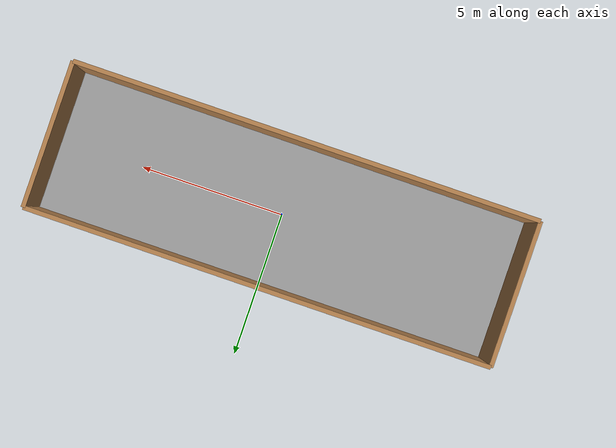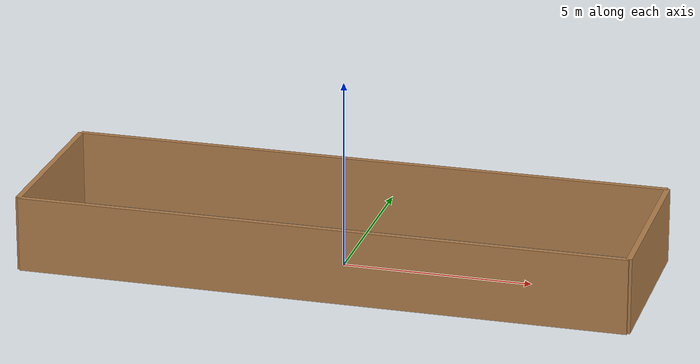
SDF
<?xml version='1.0'?>
<sdf version='1.6'>

  <model name='simple_room'>
    <pose>0 0 0 0 -0 0</pose>

    <link name="ground_plane">
      <collision name="ground_plane_collision">
        <geometry>
          <plane>
            <normal>0 0 1</normal>
            <size>16 5</size>
          </plane>
        </geometry>
        <surface>
          <contact>
             <collide_bitmask>0xffff</collide_bitmask>
          </contact>
          <friction>
            <ode>
              <mu>100</mu>
              <mu2>50</mu2>
            </ode>
          </friction>
        </surface>
      </collision>
      <visual name="ground_plane_visual">
        <cast_shadows>false</cast_shadows>
        <geometry>
          <plane>
            <normal>0 0 1</normal>
            <size>16 5</size>
          </plane>
        </geometry>
        <material>
          <script>
            <uri>file://media/materials/scripts/gazebo.material</uri>
            <name>Gazebo/GreyTransparent</name>
          </script>
        </material>
      </visual>
    </link>

    <link name='Wall_0'>
      <pose>0 -2.5 1 0 -0 0</pose>
      <collision name='Wall_0_Collision'>
        <geometry>
          <box>
            <size>16 0.15 2.0</size>
          </box>
        </geometry>
        <max_contacts>10</max_contacts>
        <surface>
          <contact>
            <ode/>
          </contact>
          <bounce/>
          <friction>
            <torsional>
              <ode/>
            </torsional>
            <ode/>
          </friction>
        </surface>
      </collision>
      <visual name='Wall_0_Visual'>
        <geometry>
          <box>
            <size>16 0.15 2.0</size>
          </box>
        </geometry>
        <material>
          <script>
            <uri>file://media/materials/scripts/gazebo.material</uri>
            <name>Gazebo/Wood</name>
          </script>
          <ambient>1 1 1 1</ambient>
        </material>
        <meta>
          <layer>0</layer>
        </meta>
      </visual>
      <self_collide>0</self_collide>
      <enable_wind>0</enable_wind>
      <kinematic>0</kinematic>
    </link>

    <link name='Wall_1'>
      <pose>8 -0 1 0 -0 1.5708</pose>
      <collision name='Wall_1_Collision'>
        <geometry>
          <box>
            <size>5 0.15 2.0</size>
          </box>
        </geometry>
        <max_contacts>10</max_contacts>
        <surface>
          <contact>
            <ode/>
          </contact>
          <bounce/>
          <friction>
            <torsional>
              <ode/>
            </torsional>
            <ode/>
          </friction>
        </surface>
      </collision>
      <visual name='Wall_1_Visual'>
        <geometry>
          <box>
            <size>5 0.15 2.0</size>
          </box>
        </geometry>
        <material>
          <script>
            <uri>file://media/materials/scripts/gazebo.material</uri>
            <name>Gazebo/Wood</name>
          </script>
          <ambient>1 1 1 1</ambient>
        </material>
        <meta>
          <layer>0</layer>
        </meta>
      </visual>
      <self_collide>0</self_collide>
      <enable_wind>0</enable_wind>
      <kinematic>0</kinematic>
    </link>

    <link name='Wall_2'>
      <pose>0 2.5 1 0 0 3.14159</pose>
      <collision name='Wall_2_Collision'>
        <geometry>
          <box>
            <size>16 0.15 2.0</size>
          </box>
        </geometry>
        <max_contacts>10</max_contacts>
        <surface>
          <contact>
            <ode/>
          </contact>
          <bounce/>
          <friction>
            <torsional>
              <ode/>
            </torsional>
            <ode/>
          </friction>
        </surface>
      </collision>
      <visual name='Wall_2_Visual'>
        <geometry>
          <box>
            <size>16 0.15 2.0</size>
          </box>
        </geometry>
        <material>
          <script>
            <uri>file://media/materials/scripts/gazebo.material</uri>
            <name>Gazebo/Wood</name>
          </script>
          <ambient>1 1 1 1</ambient>
        </material>
        <meta>
          <layer>0</layer>
        </meta>
      </visual>
      <self_collide>0</self_collide>
      <enable_wind>0</enable_wind>
      <kinematic>0</kinematic>
    </link>

    <link name='Wall_3'>
      <pose>-8 0 1 0 -0 -1.5708</pose>
      <collision name='Wall_3_Collision'>
        <geometry>
          <box>
            <size>5 0.15 2.0</size>
          </box>
        </geometry>
        <max_contacts>10</max_contacts>
        <surface>
          <contact>
            <ode/>
          </contact>
          <bounce/>
          <friction>
            <torsional>
              <ode/>
            </torsional>
            <ode/>
          </friction>
        </surface>
      </collision>
      <visual name='Wall_3_Visual'>
        <geometry>
          <box>
            <size>5 0.15 2.0</size>
          </box>
        </geometry>
        <material>
          <script>
            <uri>file://media/materials/scripts/gazebo.material</uri>
            <name>Gazebo/Wood</name>
          </script>
          <ambient>1 1 1 1</ambient>
        </material>
        <meta>
          <layer>0</layer>
        </meta>
      </visual>
      <self_collide>0</self_collide>
      <enable_wind>0</enable_wind>
      <kinematic>0</kinematic>
    </link>
    <static>1</static>
  </model>
</sdf>
